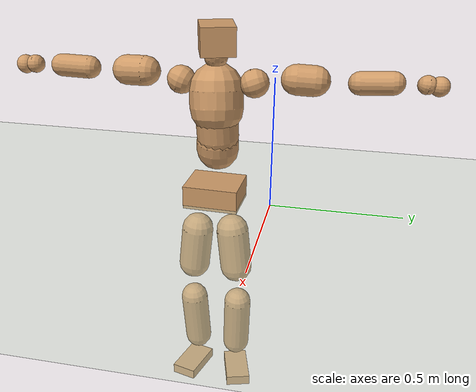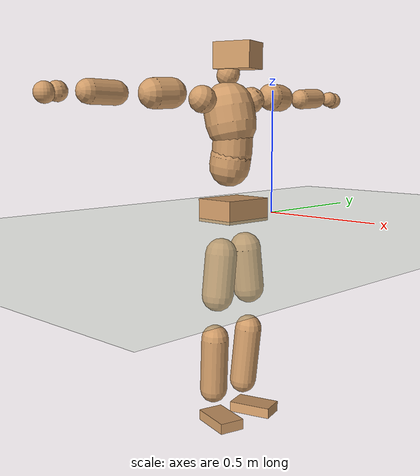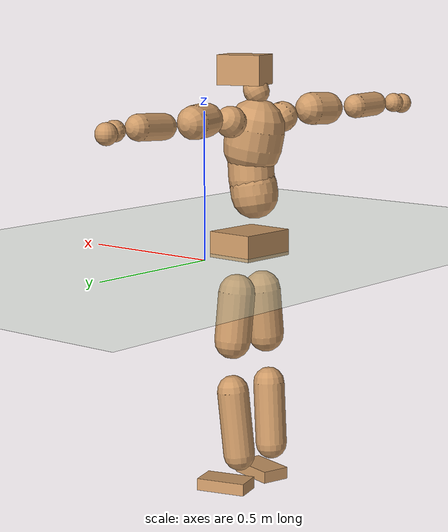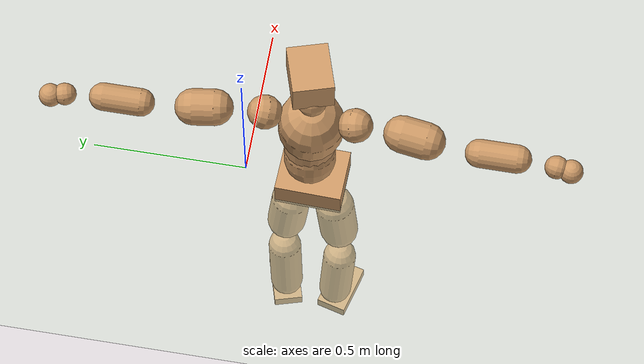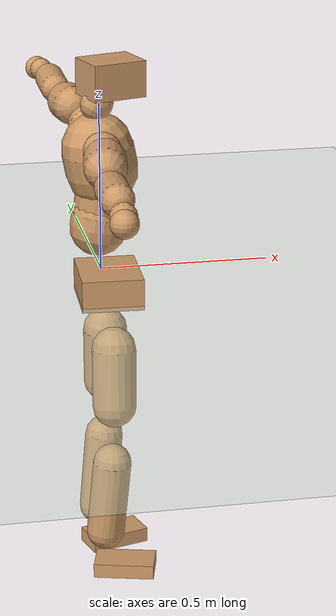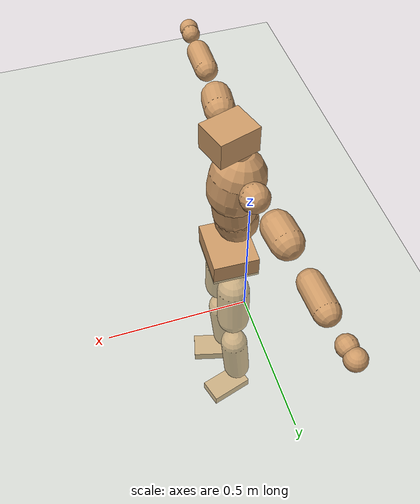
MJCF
<mujoco model="humanoid">
  <compiler coordinate="local" angle="radian"/>
  <default>
    <joint damping="0.0" armature="0.01" stiffness="0.0" limited="true"/>
    <geom conaffinity="1" condim="3" contype="7" margin="0.001" rgba="0.8 0.6 .4 1"/>
  </default>
  <asset>
    <texture type="skybox" builtin="gradient" rgb1=".4 .5 .6" rgb2="0 0 0" width="100" height="100"/>
    <texture builtin="flat" height="1278" mark="cross" markrgb="1 1 1" name="texgeom" random="0.01" rgb1="0.8 0.6 0.4" rgb2="0.8 0.6 0.4" type="cube" width="127"/>
    <texture builtin="checker" height="100" name="texplane" rgb1="0 0 0" rgb2="0.8 0.8 0.8" type="2d" width="100"/>
    <material name="MatPlane" reflectance="0.5" shininess="1" specular="1" texrepeat="60 60" texture="texplane"/>
    <material name="geom" texture="texgeom" texuniform="true"/>
  </asset>
  <worldbody>
    <light cutoff="100" diffuse="1 1 1" dir="-0 0 -1.3" directional="true" exponent="1" pos="0 0 1.3" specular=".1 .1 .1"/>
    <geom conaffinity="1" condim="3" name="floor" pos="0 0 0" rgba="0.8 0.9 0.8 1" size="100 100 .2" type="plane" material="MatPlane"/>
    <body name="Pelvis" pos="-0.0018 -0.2216 0.0385">
      <freejoint name="Pelvis"/>
      <geom type="box" contype="1" conaffinity="1" density="5359.374558" pos="-0.0110 0.0004 -0.0075" size="0.0872 0.1065 0.0451" quat="0.9998 0.0000 0.0000 -0.0183" name="Pelvis"/>
      <body name="L_Hip" pos="-0.013 0.0606 -0.0778">
        <joint name="L_Hip_x" type="hinge" pos="0 0 0" axis="1 0 0" stiffness="1600" damping="160" armature="0.02" range="-180.0000 180.0000"/>
        <joint name="L_Hip_y" type="hinge" pos="0 0 0" axis="0 1 0" stiffness="1600" damping="160" armature="0.02" range="-180.0000 180.0000"/>
        <joint name="L_Hip_z" type="hinge" pos="0 0 0" axis="0 0 1" stiffness="1600" damping="160" armature="0.02" range="-180.0000 180.0000"/>
        <geom type="capsule" contype="1" conaffinity="1" density="2040.816327" size="0.0636" fromto="0.0019 0.0102 -0.0930 0.0052 0.0284 -0.2604" name="L_Hip"/>
        <body name="L_Knee" pos="0.0071 0.0386 -0.3534">
          <joint name="L_Knee_x" type="hinge" pos="0 0 0" axis="1 0 0" stiffness="1600" damping="160" armature="0.02" range="-180.0000 180.0000"/>
          <joint name="L_Knee_y" type="hinge" pos="0 0 0" axis="0 1 0" stiffness="1600" damping="160" armature="0.02" range="-180.0000 180.0000"/>
          <joint name="L_Knee_z" type="hinge" pos="0 0 0" axis="0 0 1" stiffness="1600" damping="160" armature="0.02" range="-180.0000 180.0000"/>
          <geom type="capsule" contype="1" conaffinity="1" density="1234.567901" size="0.055" fromto="-0.0079 -0.0033 -0.0846 -0.0290 -0.0121 -0.3122" name="L_Knee"/>
          <body name="L_Ankle" pos="-0.0368 -0.0153 -0.3968">
            <joint name="L_Ankle_x" type="hinge" pos="0 0 0" axis="1 0 0" stiffness="1600" damping="160" armature="0.02" range="-180.0000 180.0000"/>
            <joint name="L_Ankle_y" type="hinge" pos="0 0 0" axis="0 1 0" stiffness="1600" damping="160" armature="0.02" range="-180.0000 180.0000"/>
            <joint name="L_Ankle_z" type="hinge" pos="0 0 0" axis="0 0 1" stiffness="1600" damping="160" armature="0.02" range="-180.0000 180.0000"/>
            <geom type="box" contype="1" conaffinity="1" density="999.999985" pos="0.0585 0.0171 -0.0277" size="0.0878 0.0486 0.0211" quat="0.9899 0.0000 0.0000 0.1416" name="L_Ankle"/>
            <body name="L_Toe" pos="0.1171 0.0342 -0.0555">
              <joint name="L_Toe_x" type="hinge" pos="0 0 0" axis="1 0 0" stiffness="1000" damping="100" armature="0.02" range="-180.0000 180.0000"/>
              <joint name="L_Toe_y" type="hinge" pos="0 0 0" axis="0 1 0" stiffness="1000" damping="100" armature="0.02" range="-180.0000 180.0000"/>
              <joint name="L_Toe_z" type="hinge" pos="0 0 0" axis="0 0 1" stiffness="1000" damping="100" armature="0.02" range="-180.0000 180.0000"/>
              <geom type="box" contype="1" conaffinity="1" density="8621078.404759" pos="0.0000 0.0000 0.0257" size="0.001 0.0024 0.001" quat="0.9891 0.0000 0.0000 0.1470" name="L_Toe"/>
            </body>
          </body>
        </body>
      </body>
      <body name="R_Hip" pos="-0.008 -0.0623 -0.0859">
        <joint name="R_Hip_x" type="hinge" pos="0 0 0" axis="1 0 0" stiffness="1600" damping="160" armature="0.02" range="-180.0000 180.0000"/>
        <joint name="R_Hip_y" type="hinge" pos="0 0 0" axis="0 1 0" stiffness="1600" damping="160" armature="0.02" range="-180.0000 180.0000"/>
        <joint name="R_Hip_z" type="hinge" pos="0 0 0" axis="0 0 1" stiffness="1600" damping="160" armature="0.02" range="-180.0000 180.0000"/>
        <geom type="capsule" contype="1" conaffinity="1" density="2040.816327" size="0.0631" fromto="-0.0015 -0.0098 -0.0925 -0.0041 -0.0273 -0.2585" name="R_Hip"/>
        <body name="R_Knee" pos="-0.0055 -0.0371 -0.3511">
          <joint name="R_Knee_x" type="hinge" pos="0 0 0" axis="1 0 0" stiffness="1600" damping="160" armature="0.02" range="-180.0000 180.0000"/>
          <joint name="R_Knee_y" type="hinge" pos="0 0 0" axis="0 1 0" stiffness="1600" damping="160" armature="0.02" range="-180.0000 180.0000"/>
          <joint name="R_Knee_z" type="hinge" pos="0 0 0" axis="0 0 1" stiffness="1600" damping="160" armature="0.02" range="-180.0000 180.0000"/>
          <geom type="capsule" contype="1" conaffinity="1" density="1234.567901" size="0.0552" fromto="-0.0075 0.0040 -0.0848 -0.0269 0.0142 -0.3033" name="R_Knee"/>
          <body name="R_Ankle" pos="-0.0345 0.0182 -0.3881">
            <joint name="R_Ankle_x" type="hinge" pos="0 0 0" axis="1 0 0" stiffness="1600" damping="160" armature="0.02" range="-180.0000 180.0000"/>
            <joint name="R_Ankle_y" type="hinge" pos="0 0 0" axis="0 1 0" stiffness="1600" damping="160" armature="0.02" range="-180.0000 180.0000"/>
            <joint name="R_Ankle_z" type="hinge" pos="0 0 0" axis="0 0 1" stiffness="1600" damping="160" armature="0.02" range="-180.0000 180.0000"/>
            <geom type="box" contype="1" conaffinity="1" density="999.999993" pos="0.0623 -0.0167 -0.0279" size="0.0873 0.0508 0.0208" quat="0.9914 0.0000 0.0000 -0.1307" name="R_Ankle"/>
            <body name="R_Toe" pos="0.1246 -0.0334 -0.0558">
              <joint name="R_Toe_x" type="hinge" pos="0 0 0" axis="1 0 0" stiffness="1000" damping="100" armature="0.02" range="-180.0000 180.0000"/>
              <joint name="R_Toe_y" type="hinge" pos="0 0 0" axis="0 1 0" stiffness="1000" damping="100" armature="0.02" range="-180.0000 180.0000"/>
              <joint name="R_Toe_z" type="hinge" pos="0 0 0" axis="0 0 1" stiffness="1000" damping="100" armature="0.02" range="-180.0000 180.0000"/>
              <geom type="box" contype="1" conaffinity="1" density="8245324.823993" pos="0.0000 0.0000 0.0271" size="0.0011 0.0025 0.001" quat="0.9926 0.0000 0.0000 -0.1214" name="R_Toe"/>
            </body>
          </body>
        </body>
      </body>
      <body name="Torso" pos="-0.0452 0.0041 0.119">
        <joint name="Torso_x" type="hinge" pos="0 0 0" axis="1 0 0" stiffness="2000" damping="200" armature="0.02" range="-180.0000 180.0000"/>
        <joint name="Torso_y" type="hinge" pos="0 0 0" axis="0 1 0" stiffness="2000" damping="200" armature="0.02" range="-180.0000 180.0000"/>
        <joint name="Torso_z" type="hinge" pos="0 0 0" axis="0 0 1" stiffness="2000" damping="200" armature="0.02" range="-180.0000 180.0000"/>
        <geom type="capsule" contype="1" conaffinity="1" density="2040.816327" size="0.0812" fromto="0.0138 0.0023 0.0800 0.0076 0.0013 0.0441" name="Torso"/>
        <body name="Spine" pos="0.0213 0.0035 0.1241">
          <joint name="Spine_x" type="hinge" pos="0 0 0" axis="1 0 0" stiffness="2000" damping="200" armature="0.02" range="-180.0000 180.0000"/>
          <joint name="Spine_y" type="hinge" pos="0 0 0" axis="0 1 0" stiffness="2000" damping="200" armature="0.02" range="-180.0000 180.0000"/>
          <joint name="Spine_z" type="hinge" pos="0 0 0" axis="0 0 1" stiffness="2000" damping="200" armature="0.02" range="-180.0000 180.0000"/>
          <geom type="capsule" contype="1" conaffinity="1" density="2040.816327" size="0.0796" fromto="0.0076 -0.0030 0.0792 -0.0028 0.0011 -0.0290" name="Spine"/>
          <body name="Chest" pos="0.0048 -0.0019 0.0502">
            <joint name="Chest_x" type="hinge" pos="0 0 0" axis="1 0 0" stiffness="2000" damping="200" armature="0.02" range="-180.0000 180.0000"/>
            <joint name="Chest_y" type="hinge" pos="0 0 0" axis="0 1 0" stiffness="2000" damping="200" armature="0.02" range="-180.0000 180.0000"/>
            <joint name="Chest_z" type="hinge" pos="0 0 0" axis="0 0 1" stiffness="2000" damping="200" armature="0.02" range="-180.0000 180.0000"/>
            <geom type="capsule" contype="1" conaffinity="1" density="2040.816327" size="0.1011" fromto="-0.0191 -0.0053 0.0992 -0.0069 -0.0019 0.0356" name="Chest"/>
            <body name="Neck" pos="-0.0396 -0.0118 0.1912">
              <joint name="Neck_x" type="hinge" pos="0 0 0" axis="1 0 0" stiffness="1000" damping="100" armature="0.02" range="-180.0000 180.0000"/>
              <joint name="Neck_y" type="hinge" pos="0 0 0" axis="0 1 0" stiffness="1000" damping="100" armature="0.02" range="-180.0000 180.0000"/>
              <joint name="Neck_z" type="hinge" pos="0 0 0" axis="0 0 1" stiffness="1000" damping="100" armature="0.02" range="-180.0000 180.0000"/>
              <geom type="capsule" contype="1" conaffinity="1" density="1000" size="0.0441" fromto="0.0217 0.0059 0.0379 0.0179 0.0049 0.0312" name="Neck"/>
              <body name="Head" pos="0.0396 0.0108 0.0691">
                <joint name="Head_x" type="hinge" pos="0 0 0" axis="1 0 0" stiffness="1000" damping="100" armature="0.02" range="-180.0000 180.0000"/>
                <joint name="Head_y" type="hinge" pos="0 0 0" axis="0 1 0" stiffness="1000" damping="100" armature="0.02" range="-180.0000 180.0000"/>
                <joint name="Head_z" type="hinge" pos="0 0 0" axis="0 0 1" stiffness="1000" damping="100" armature="0.02" range="-180.0000 180.0000"/>
                <geom type="box" contype="1" conaffinity="1" density="2249.999839" pos="0.0208 0.0064 0.0355" size="0.077 0.0624 0.0508" quat="0.9889 0.0000 0.0000 0.1485" name="Head"/>
              </body>
            </body>
            <body name="L_Thorax" pos="-0.0163 0.0727 0.1077">
              <joint name="L_Thorax_x" type="hinge" pos="0 0 0" axis="1 0 0" stiffness="1000" damping="100" armature="0.02" range="-180.0000 180.0000"/>
              <joint name="L_Thorax_y" type="hinge" pos="0 0 0" axis="0 1 0" stiffness="1000" damping="100" armature="0.02" range="-180.0000 180.0000"/>
              <joint name="L_Thorax_z" type="hinge" pos="0 0 0" axis="0 0 1" stiffness="1000" damping="100" armature="0.02" range="-180.0000 180.0000"/>
              <geom type="capsule" contype="1" conaffinity="1" density="1000" size="0.053" fromto="-0.0100 0.0621 0.0219 -0.0103 0.0640 0.0226" name="L_Thorax"/>
              <body name="L_Shoulder" pos="-0.0203 0.1261 0.0445">
                <joint name="L_Shoulder_x" type="hinge" pos="0 0 0" axis="1 0 0" stiffness="1000" damping="100" armature="0.02" range="-720.0000 720.0000"/>
                <joint name="L_Shoulder_y" type="hinge" pos="0 0 0" axis="0 1 0" stiffness="1000" damping="100" armature="0.02" range="-720.0000 720.0000"/>
                <joint name="L_Shoulder_z" type="hinge" pos="0 0 0" axis="0 0 1" stiffness="1000" damping="100" armature="0.02" range="-720.0000 720.0000"/>
                <geom type="capsule" contype="1" conaffinity="1" density="1000" size="0.0562" fromto="-0.0092 0.0856 -0.0045 -0.0164 0.1522 -0.0080" name="L_Shoulder"/>
                <body name="L_Elbow" pos="-0.0256 0.2379 -0.0125">
                  <joint name="L_Elbow_x" type="hinge" pos="0 0 0" axis="1 0 0" stiffness="1000" damping="100" armature="0.02" range="-720.0000 720.0000"/>
                  <joint name="L_Elbow_y" type="hinge" pos="0 0 0" axis="0 1 0" stiffness="1000" damping="100" armature="0.02" range="-720.0000 720.0000"/>
                  <joint name="L_Elbow_z" type="hinge" pos="0 0 0" axis="0 0 1" stiffness="1000" damping="100" armature="0.02" range="-720.0000 720.0000"/>
                  <geom type="capsule" contype="1" conaffinity="1" density="1000" size="0.0429" fromto="-0.0017 0.0728 0.0038 -0.0043 0.1876 0.0097" name="L_Elbow"/>
                  <body name="L_Wrist" pos="-0.0059 0.2604 0.0135">
                    <joint name="L_Wrist_x" type="hinge" pos="0 0 0" axis="1 0 0" stiffness="600" damping="60" armature="0.02" range="-180.0000 180.0000"/>
                    <joint name="L_Wrist_y" type="hinge" pos="0 0 0" axis="0 1 0" stiffness="600" damping="60" armature="0.02" range="-180.0000 180.0000"/>
                    <joint name="L_Wrist_z" type="hinge" pos="0 0 0" axis="0 0 1" stiffness="600" damping="60" armature="0.02" range="-180.0000 180.0000"/>
                    <geom type="capsule" contype="1" conaffinity="1" density="1000" size="0.034" fromto="-0.0076 0.0424 -0.0052 -0.0080 0.0443 -0.0055" name="L_Wrist"/>
                    <body name="L_Hand" pos="-0.0156 0.0867 -0.0107">
                      <joint name="L_Hand_x" type="hinge" pos="0 0 0" axis="1 0 0" stiffness="600" damping="60" armature="0.02" range="-180.0000 180.0000"/>
                      <joint name="L_Hand_y" type="hinge" pos="0 0 0" axis="0 1 0" stiffness="600" damping="60" armature="0.02" range="-180.0000 180.0000"/>
                      <joint name="L_Hand_z" type="hinge" pos="0 0 0" axis="0 0 1" stiffness="600" damping="60" armature="0.02" range="-180.0000 180.0000"/>
                      <geom type="sphere" contype="1" conaffinity="1" density="1000" size="0.0355" pos="0.0000 0.0000 0.0000" name="L_Hand"/>
                    </body>
                  </body>
                </body>
              </body>
            </body>
            <body name="R_Thorax" pos="-0.022 -0.0826 0.1055">
              <joint name="R_Thorax_x" type="hinge" pos="0 0 0" axis="1 0 0" stiffness="1000" damping="100" armature="0.02" range="-180.0000 180.0000"/>
              <joint name="R_Thorax_y" type="hinge" pos="0 0 0" axis="0 1 0" stiffness="1000" damping="100" armature="0.02" range="-180.0000 180.0000"/>
              <joint name="R_Thorax_z" type="hinge" pos="0 0 0" axis="0 0 1" stiffness="1000" damping="100" armature="0.02" range="-180.0000 180.0000"/>
              <geom type="capsule" contype="1" conaffinity="1" density="1000" size="0.0528" fromto="-0.0051 -0.0569 0.0229 -0.0053 -0.0587 0.0236" name="R_Thorax"/>
              <body name="R_Shoulder" pos="-0.0104 -0.1156 0.0465">
                <joint name="R_Shoulder_x" type="hinge" pos="0 0 0" axis="1 0 0" stiffness="1000" damping="100" armature="0.02" range="-720.0000 720.0000"/>
                <joint name="R_Shoulder_y" type="hinge" pos="0 0 0" axis="0 1 0" stiffness="1000" damping="100" armature="0.02" range="-720.0000 720.0000"/>
                <joint name="R_Shoulder_z" type="hinge" pos="0 0 0" axis="0 0 1" stiffness="1000" damping="100" armature="0.02" range="-720.0000 720.0000"/>
                <geom type="capsule" contype="1" conaffinity="1" density="1000" size="0.0568" fromto="-0.0117 -0.0860 -0.0035 -0.0221 -0.1623 -0.0066" name="R_Shoulder"/>
                <body name="R_Elbow" pos="-0.0338 -0.2482 -0.0101">
                  <joint name="R_Elbow_x" type="hinge" pos="0 0 0" axis="1 0 0" stiffness="1000" damping="100" armature="0.02" range="-720.0000 720.0000"/>
                  <joint name="R_Elbow_y" type="hinge" pos="0 0 0" axis="0 1 0" stiffness="1000" damping="100" armature="0.02" range="-720.0000 720.0000"/>
                  <joint name="R_Elbow_z" type="hinge" pos="0 0 0" axis="0 0 1" stiffness="1000" damping="100" armature="0.02" range="-720.0000 720.0000"/>
                  <geom type="capsule" contype="1" conaffinity="1" density="1000" size="0.0434" fromto="-0.0013 -0.0734 0.0013 -0.0032 -0.1876 0.0034" name="R_Elbow"/>
                  <body name="R_Wrist" pos="-0.0045 -0.2609 0.0048">
                    <joint name="R_Wrist_x" type="hinge" pos="0 0 0" axis="1 0 0" stiffness="600" damping="60" armature="0.02" range="-180.0000 180.0000"/>
                    <joint name="R_Wrist_y" type="hinge" pos="0 0 0" axis="0 1 0" stiffness="600" damping="60" armature="0.02" range="-180.0000 180.0000"/>
                    <joint name="R_Wrist_z" type="hinge" pos="0 0 0" axis="0 0 1" stiffness="600" damping="60" armature="0.02" range="-180.0000 180.0000"/>
                    <geom type="capsule" contype="1" conaffinity="1" density="1000" size="0.035" fromto="-0.0050 -0.0436 -0.0044 -0.0052 -0.0456 -0.0046" name="R_Wrist"/>
                    <body name="R_Hand" pos="-0.0102 -0.0892 -0.0089">
                      <joint name="R_Hand_x" type="hinge" pos="0 0 0" axis="1 0 0" stiffness="600" damping="60" armature="0.02" range="-180.0000 180.0000"/>
                      <joint name="R_Hand_y" type="hinge" pos="0 0 0" axis="0 1 0" stiffness="600" damping="60" armature="0.02" range="-180.0000 180.0000"/>
                      <joint name="R_Hand_z" type="hinge" pos="0 0 0" axis="0 0 1" stiffness="600" damping="60" armature="0.02" range="-180.0000 180.0000"/>
                      <geom type="sphere" contype="1" conaffinity="1" density="1000" size="0.0362" pos="0.0000 0.0000 0.0000" name="R_Hand"/>
                    </body>
                  </body>
                </body>
              </body>
            </body>
          </body>
        </body>
      </body>
    </body>
  </worldbody>
  <actuator>
    <motor name="L_Hip_x" joint="L_Hip_x" gear="500"/>
    <motor name="L_Hip_y" joint="L_Hip_y" gear="500"/>
    <motor name="L_Hip_z" joint="L_Hip_z" gear="500"/>
    <motor name="L_Knee_x" joint="L_Knee_x" gear="500"/>
    <motor name="L_Knee_y" joint="L_Knee_y" gear="500"/>
    <motor name="L_Knee_z" joint="L_Knee_z" gear="500"/>
    <motor name="L_Ankle_x" joint="L_Ankle_x" gear="500"/>
    <motor name="L_Ankle_y" joint="L_Ankle_y" gear="500"/>
    <motor name="L_Ankle_z" joint="L_Ankle_z" gear="500"/>
    <motor name="L_Toe_x" joint="L_Toe_x" gear="500"/>
    <motor name="L_Toe_y" joint="L_Toe_y" gear="500"/>
    <motor name="L_Toe_z" joint="L_Toe_z" gear="500"/>
    <motor name="R_Hip_x" joint="R_Hip_x" gear="500"/>
    <motor name="R_Hip_y" joint="R_Hip_y" gear="500"/>
    <motor name="R_Hip_z" joint="R_Hip_z" gear="500"/>
    <motor name="R_Knee_x" joint="R_Knee_x" gear="500"/>
    <motor name="R_Knee_y" joint="R_Knee_y" gear="500"/>
    <motor name="R_Knee_z" joint="R_Knee_z" gear="500"/>
    <motor name="R_Ankle_x" joint="R_Ankle_x" gear="500"/>
    <motor name="R_Ankle_y" joint="R_Ankle_y" gear="500"/>
    <motor name="R_Ankle_z" joint="R_Ankle_z" gear="500"/>
    <motor name="R_Toe_x" joint="R_Toe_x" gear="500"/>
    <motor name="R_Toe_y" joint="R_Toe_y" gear="500"/>
    <motor name="R_Toe_z" joint="R_Toe_z" gear="500"/>
    <motor name="Torso_x" joint="Torso_x" gear="500"/>
    <motor name="Torso_y" joint="Torso_y" gear="500"/>
    <motor name="Torso_z" joint="Torso_z" gear="500"/>
    <motor name="Spine_x" joint="Spine_x" gear="500"/>
    <motor name="Spine_y" joint="Spine_y" gear="500"/>
    <motor name="Spine_z" joint="Spine_z" gear="500"/>
    <motor name="Chest_x" joint="Chest_x" gear="500"/>
    <motor name="Chest_y" joint="Chest_y" gear="500"/>
    <motor name="Chest_z" joint="Chest_z" gear="500"/>
    <motor name="Neck_x" joint="Neck_x" gear="500"/>
    <motor name="Neck_y" joint="Neck_y" gear="500"/>
    <motor name="Neck_z" joint="Neck_z" gear="500"/>
    <motor name="Head_x" joint="Head_x" gear="500"/>
    <motor name="Head_y" joint="Head_y" gear="500"/>
    <motor name="Head_z" joint="Head_z" gear="500"/>
    <motor name="L_Thorax_x" joint="L_Thorax_x" gear="500"/>
    <motor name="L_Thorax_y" joint="L_Thorax_y" gear="500"/>
    <motor name="L_Thorax_z" joint="L_Thorax_z" gear="500"/>
    <motor name="L_Shoulder_x" joint="L_Shoulder_x" gear="500"/>
    <motor name="L_Shoulder_y" joint="L_Shoulder_y" gear="500"/>
    <motor name="L_Shoulder_z" joint="L_Shoulder_z" gear="500"/>
    <motor name="L_Elbow_x" joint="L_Elbow_x" gear="500"/>
    <motor name="L_Elbow_y" joint="L_Elbow_y" gear="500"/>
    <motor name="L_Elbow_z" joint="L_Elbow_z" gear="500"/>
    <motor name="L_Wrist_x" joint="L_Wrist_x" gear="500"/>
    <motor name="L_Wrist_y" joint="L_Wrist_y" gear="500"/>
    <motor name="L_Wrist_z" joint="L_Wrist_z" gear="500"/>
    <motor name="L_Hand_x" joint="L_Hand_x" gear="500"/>
    <motor name="L_Hand_y" joint="L_Hand_y" gear="500"/>
    <motor name="L_Hand_z" joint="L_Hand_z" gear="500"/>
    <motor name="R_Thorax_x" joint="R_Thorax_x" gear="500"/>
    <motor name="R_Thorax_y" joint="R_Thorax_y" gear="500"/>
    <motor name="R_Thorax_z" joint="R_Thorax_z" gear="500"/>
    <motor name="R_Shoulder_x" joint="R_Shoulder_x" gear="500"/>
    <motor name="R_Shoulder_y" joint="R_Shoulder_y" gear="500"/>
    <motor name="R_Shoulder_z" joint="R_Shoulder_z" gear="500"/>
    <motor name="R_Elbow_x" joint="R_Elbow_x" gear="500"/>
    <motor name="R_Elbow_y" joint="R_Elbow_y" gear="500"/>
    <motor name="R_Elbow_z" joint="R_Elbow_z" gear="500"/>
    <motor name="R_Wrist_x" joint="R_Wrist_x" gear="500"/>
    <motor name="R_Wrist_y" joint="R_Wrist_y" gear="500"/>
    <motor name="R_Wrist_z" joint="R_Wrist_z" gear="500"/>
    <motor name="R_Hand_x" joint="R_Hand_x" gear="500"/>
    <motor name="R_Hand_y" joint="R_Hand_y" gear="500"/>
    <motor name="R_Hand_z" joint="R_Hand_z" gear="500"/>
  </actuator>
  <contact>
    <exclude body1="Torso" body2="Chest"/>
    <exclude body1="Head" body2="Chest"/>
    <exclude body1="R_Knee" body2="R_Toe"/>
    <exclude body1="R_Knee" body2="L_Ankle"/>
    <exclude body1="R_Knee" body2="L_Toe"/>
    <exclude body1="L_Knee" body2="L_Toe"/>
    <exclude body1="L_Knee" body2="R_Ankle"/>
    <exclude body1="L_Knee" body2="R_Toe"/>
    <exclude body1="L_Shoulder" body2="Chest"/>
    <exclude body1="R_Shoulder" body2="Chest"/>
  </contact>
  <sensor/>
  <size njmax="700" nconmax="700"/>
</mujoco>
